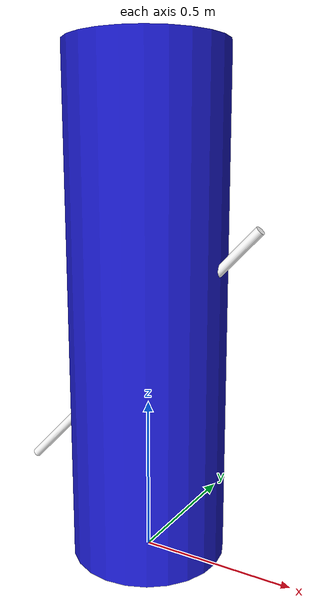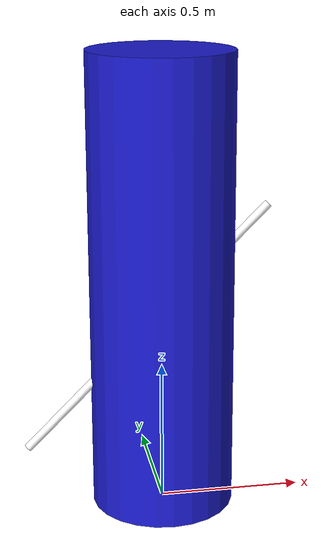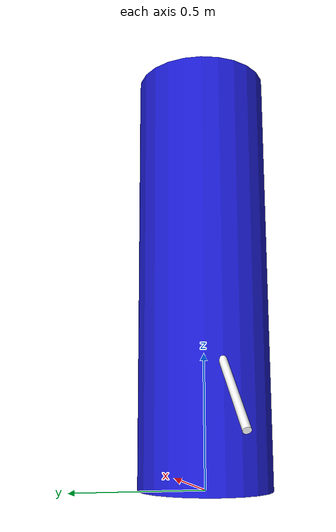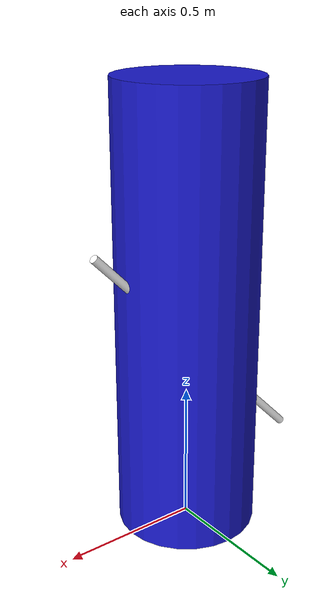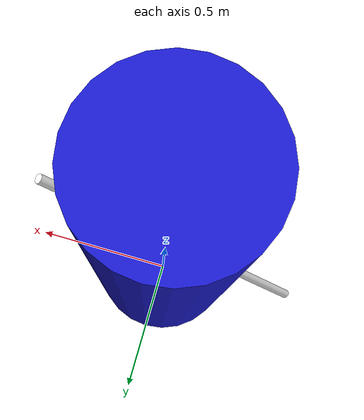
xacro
<?xml version="1.0"?>
<robot xmlns:xacro="http://www.ros.org/wiki/xacro" name="smartnav">

  <xacro:macro name="cylinder_inertia" params="m r h">
    <inertial>
      <mass value="${m}"/>
      <inertia ixx="${m*(3*r*r+h*h)/12}" ixy="0" ixz="0"
               iyy="${m*(3*r*r+h*h)/12}" iyz="0"
               izz="${m*r*r/2}"/>
    </inertial>
  </xacro:macro>

  <link name="base_link">
    <visual>
      <geometry><cylinder radius="0.25" length="1.6"/></geometry>
      <origin xyz="0 0 0.8" rpy="0 0 0"/>
      <material name="blue"><color rgba="0.1 0.1 0.8 1.0"/></material>
    </visual>
    <collision>
      <geometry><cylinder radius="0.25" length="1.6"/></geometry>
      <origin xyz="0 0 0.8" rpy="0 0 0"/>
    </collision>
    <xacro:cylinder_inertia m="65.0" r="0.25" h="1.6"/>
  </link>

  <link name="cane_link">
    <visual>
      <geometry><cylinder radius="0.015" length="1.2"/></geometry>
      <origin xyz="0 0 -0.5" rpy="0 0 0"/>
      <material name="white"><color rgba="1.0 1.0 1.0 1.0"/></material>
    </visual>
    <collision>
      <geometry><cylinder radius="0.015" length="1.2"/></geometry>
      <origin xyz="0 0 -0.5" rpy="0 0 0"/>
    </collision>
    <xacro:cylinder_inertia m="0.8" r="0.015" h="1.2"/>
  </link>

  <joint name="arm_joint" type="fixed">
    <parent link="base_link"/>
    <child link="cane_link"/>
    <origin xyz="0.3 0 1.0" rpy="0 0.785 0"/>
  </joint>

  <gazebo reference="base_link">
    <material>
      <ambient>0.1 0.1 0.8 1</ambient>
      <diffuse>0.1 0.1 0.8 1</diffuse>
    </material>
  </gazebo>

  <gazebo reference="cane_link">
    <material>
      <ambient>1.0 1.0 1.0 1</ambient>
      <diffuse>1.0 1.0 1.0 1</diffuse>
    </material>
  </gazebo>

  <gazebo>
    <plugin filename="gz-sim-velocity-control-system"
            name="gz::sim::systems::VelocityControl">

      <topic>/cmd_vel</topic>
      <link_name>base_link</link_name>

    </plugin>
  </gazebo>

<link name="laser_link">
    <visual>
      <geometry><cylinder radius="0.02" length="0.05"/></geometry>
      <material name="red"><color rgba="1.0 0.0 0.0 1.0"/></material>
    </visual>
  </link>

  <joint name="laser_joint" type="fixed">
    <parent link="cane_link"/>
    <child link="laser_link"/>
    <origin xyz="0 0 -0.6" rpy="0 1.5708 0"/>
  </joint>

  <gazebo reference="laser_link">
    <material>
      <ambient>1.0 0.0 0.0 1</ambient>
      <diffuse>1.0 0.0 0.0 1</diffuse>
    </material>
    <sensor name="laser_sensor" type="gpu_lidar">
      <always_on>true</always_on>
      <update_rate>10.0</update_rate>
      <visualize>true</visualize> <topic>/scan</topic>
      <gz_frame_id>laser_link</gz_frame_id>
      <ray>
        <scan>
          <horizontal>
            <samples>1</samples> <resolution>1</resolution>
            <min_angle>0</min_angle>
            <max_angle>0</max_angle>
          </horizontal>
        </scan>
        <range>
          <min>0.1</min>
          <max>3.0</max> </range>
      </ray>
    </sensor>
  </gazebo>

</robot>
